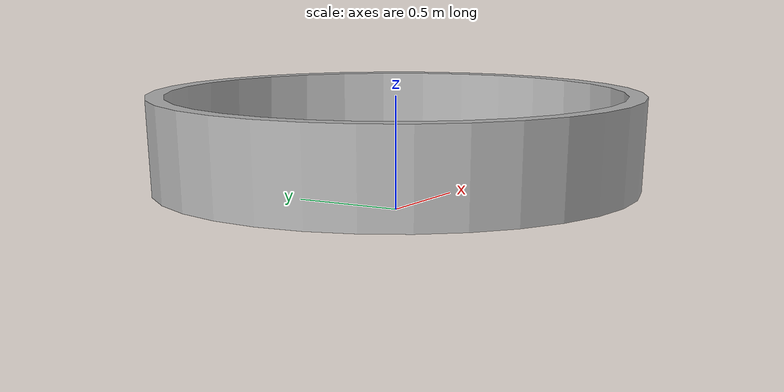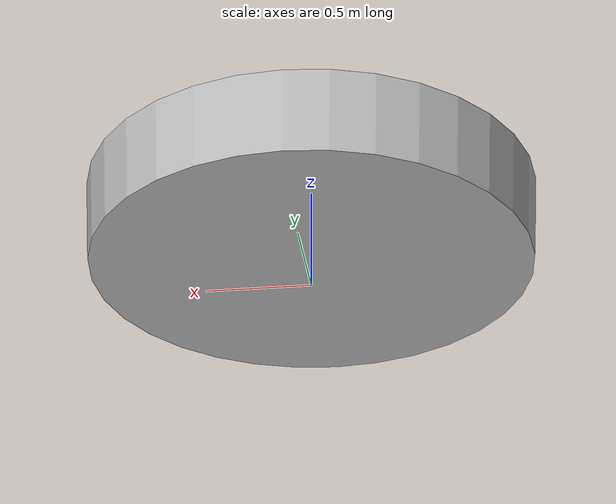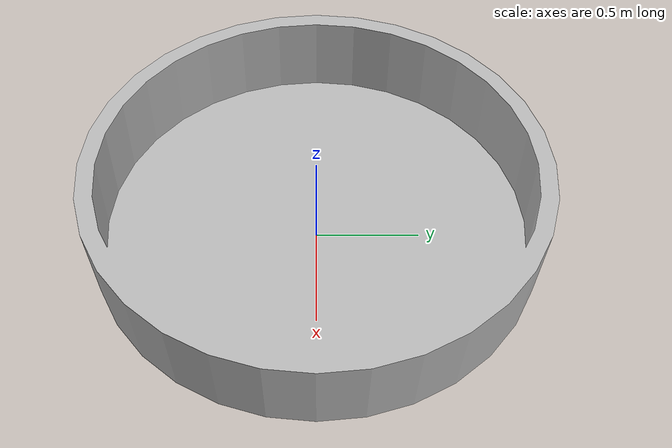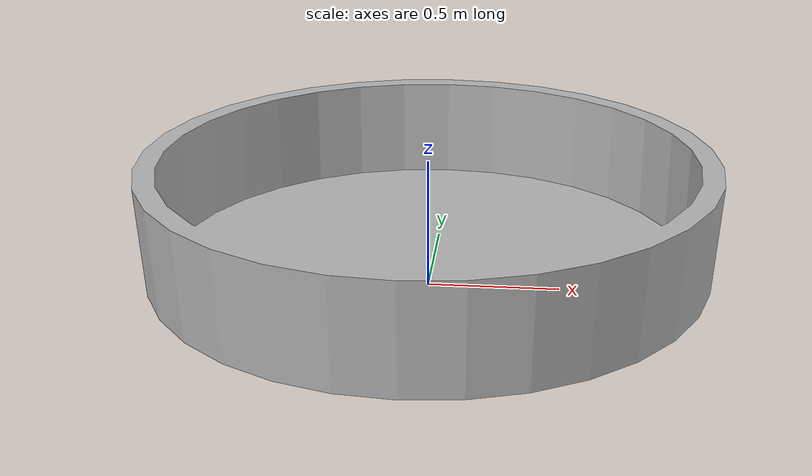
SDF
<?xml version="1.0" ?>
<sdf version="1.5">
  <model name="ring_wall_type3">
    <static>true</static>
    <link name="link">
      <collision name="surface">
        <pose>0 0 0.31 0 0 0</pose>
        <geometry>
          <mesh>
          <uri>model://ring_wall/meshes/ring_wall.obj</uri>
           <scale>0.01 0.01 0.01</scale>
          </mesh>
        </geometry>
      </collision>

      <visual name="visual">
        <pose>0 0 0.31 0 0 0</pose>
        <geometry>
          <mesh>
            <uri>model://ring_wall/meshes/ring_wall.obj</uri>
             <scale>0.01 0.01 0.01</scale>
          </mesh>
        </geometry>
      </visual>
    </link>
  </model>
</sdf>
